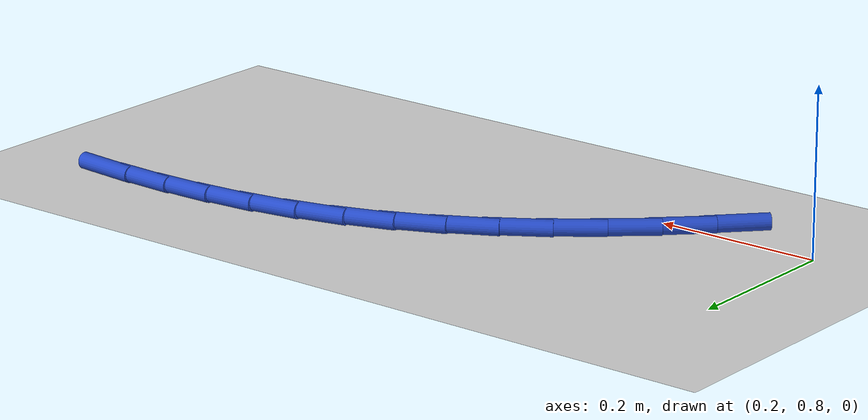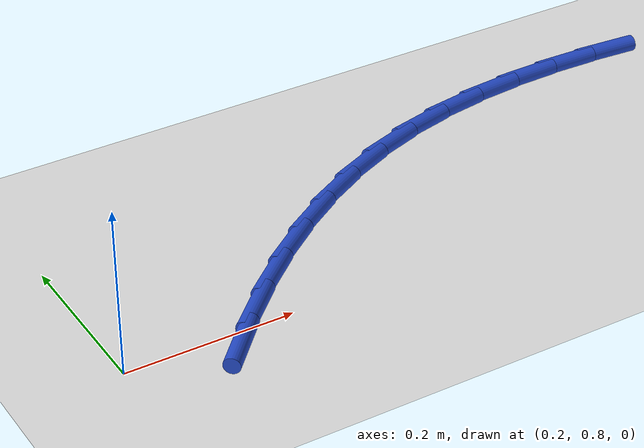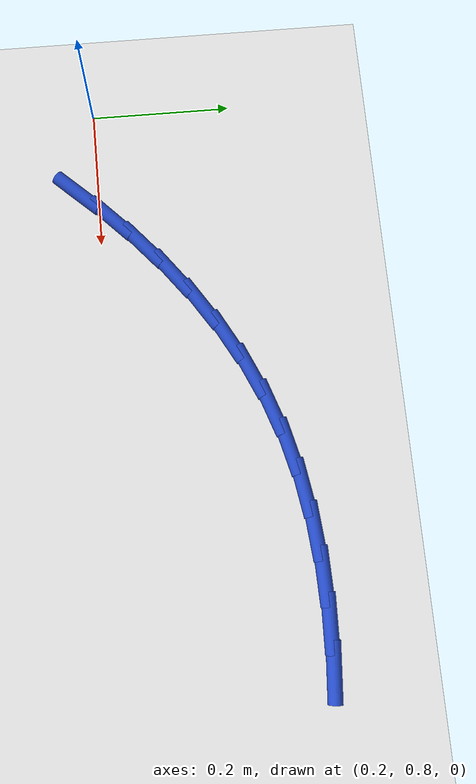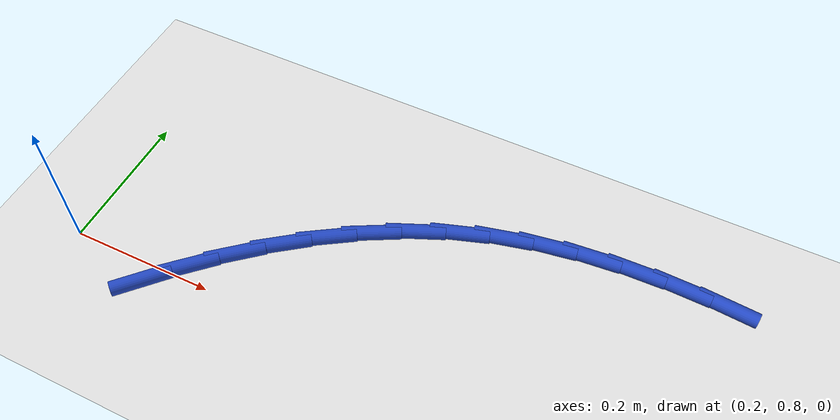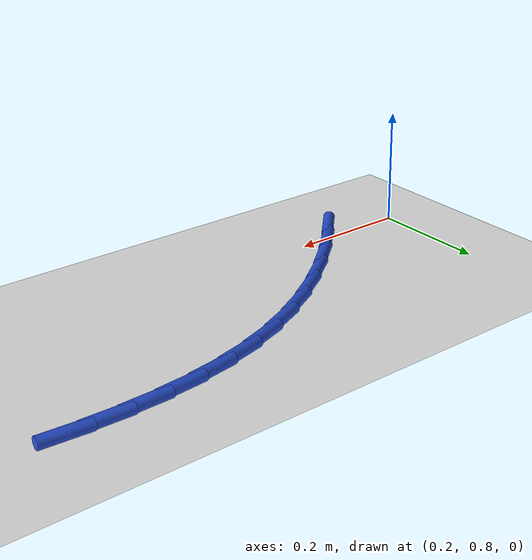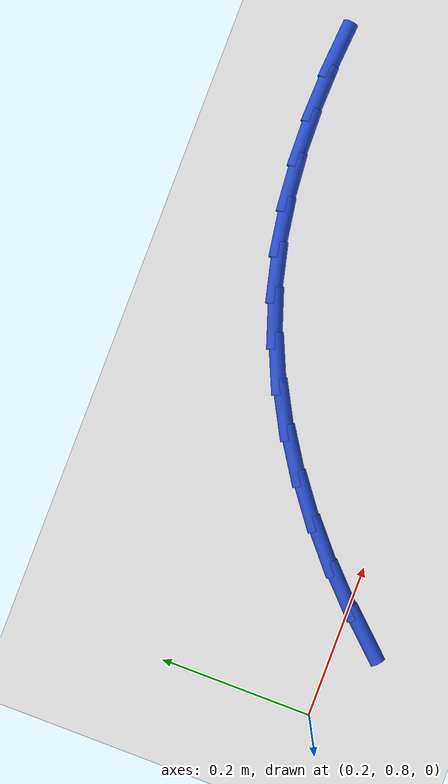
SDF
<sdf version="1.6">
 <world name="default">
  <model name="ground_plane">
   <static>1</static>
   <link name="link">
    <collision name="collision">
     <geometry><plane><normal>0 0 1</normal><size>100 100</size></plane></geometry>
     <surface><friction><ode><mu>100</mu><mu2>50</mu2></ode></friction></surface>
    </collision>
    <visual name="visual">
     <cast_shadows>0</cast_shadows>
     <geometry><plane><normal>0 0 1</normal><size>100 100</size></plane></geometry>
     <material>
      <script><uri>file://media/materials/scripts/gazebo.material</uri><name>Gazebo/WhiteGlow</name></script>
     </material>
    </visual>
   </link>
  </model>
  <model name="line">
   <link name="link_14">
    <pose>0.322248117505355 0.7719158314990692 0.01 0 1.57 0.8221939506581101</pose>
    <collision name="collision">
     <geometry><cylinder><radius>0.01</radius><length>0.08</length></cylinder></geometry>
    </collision>
    <visual name="visual">
     <material>
      <script><name>Gazebo/Blue</name><uri>file://media/materials/scripts/gazebo.material</uri></script>
     </material>
     <geometry><cylinder><radius>0.01</radius><length>0.08</length></cylinder></geometry>
    </visual>
   </link>
   <link name="link_15">
    <pose>0.3643796425420993 0.8172678354217048 0.01 0 1.57 0.7667286236017107</pose>
    <collision name="collision">
     <geometry><cylinder><radius>0.01</radius><length>0.08</length></cylinder></geometry>
    </collision>
    <visual name="visual">
     <material>
      <script><name>Gazebo/Blue</name><uri>file://media/materials/scripts/gazebo.material</uri></script>
     </material>
     <geometry><cylinder><radius>0.01</radius><length>0.08</length></cylinder></geometry>
    </visual>
   </link>
   <link name="link_16">
    <pose>0.40858137969574554 0.8598491840345921 0.01 0 1.57 0.7068071699966685</pose>
    <collision name="collision">
     <geometry><cylinder><radius>0.01</radius><length>0.08</length></cylinder></geometry>
    </collision>
    <visual name="visual">
     <material>
      <script><name>Gazebo/Blue</name><uri>file://media/materials/scripts/gazebo.material</uri></script>
     </material>
     <geometry><cylinder><radius>0.01</radius><length>0.08</length></cylinder></geometry>
    </visual>
   </link>
   <link name="link_17">
    <pose>0.45478569107052236 0.8993073046756761 0.01 0 1.57 0.6418756305259685</pose>
    <collision name="collision">
     <geometry><cylinder><radius>0.01</radius><length>0.08</length></cylinder></geometry>
    </collision>
    <visual name="visual">
     <material>
      <script><name>Gazebo/Blue</name><uri>file://media/materials/scripts/gazebo.material</uri></script>
     </material>
     <geometry><cylinder><radius>0.01</radius><length>0.08</length></cylinder></geometry>
    </visual>
   </link>
   <link name="link_18">
    <pose>0.5029249387706585 0.9352896246829016 0.01 0 1.57 0.5714348431623006</pose>
    <collision name="collision">
     <geometry><cylinder><radius>0.01</radius><length>0.08</length></cylinder></geometry>
    </collision>
    <visual name="visual">
     <material>
      <script><name>Gazebo/Blue</name><uri>file://media/materials/scripts/gazebo.material</uri></script>
     </material>
     <geometry><cylinder><radius>0.01</radius><length>0.08</length></cylinder></geometry>
    </visual>
   </link>
   <link name="link_19">
    <pose>0.5529314849003826 0.9674435713942138 0.01 0 1.57 0.4950981298889312</pose>
    <collision name="collision">
     <geometry><cylinder><radius>0.01</radius><length>0.08</length></cylinder></geometry>
    </collision>
    <visual name="visual">
     <material>
      <script><name>Gazebo/Blue</name><uri>file://media/materials/scripts/gazebo.material</uri></script>
     </material>
     <geometry><cylinder><radius>0.01</radius><length>0.08</length></cylinder></geometry>
    </visual>
   </link>
   <link name="link_20">
    <pose>0.6047376915639232 0.9954165721475574 0.01 0 1.57 0.4126691974608869</pose>
    <collision name="collision">
     <geometry><cylinder><radius>0.01</radius><length>0.08</length></cylinder></geometry>
    </collision>
    <visual name="visual">
     <material>
      <script><name>Gazebo/Blue</name><uri>file://media/materials/scripts/gazebo.material</uri></script>
     </material>
     <geometry><cylinder><radius>0.01</radius><length>0.08</length></cylinder></geometry>
    </visual>
   </link>
   <link name="link_21">
    <pose>0.6582759208655091 1.0188560542808776 0.01 0 1.57 0.324381510694979</pose>
    <collision name="collision">
     <geometry><cylinder><radius>0.01</radius><length>0.08</length></cylinder></geometry>
    </collision>
    <visual name="visual">
     <material>
      <script><name>Gazebo/Blue</name><uri>file://media/materials/scripts/gazebo.material</uri></script>
     </material>
     <geometry><cylinder><radius>0.01</radius><length>0.08</length></cylinder></geometry>
    </visual>
   </link>
   <link name="link_22">
    <pose>0.7134767804450536 1.037417850654256 0.01 0 1.57 0.23632776805525896</pose>
    <collision name="collision">
     <geometry><cylinder><radius>0.01</radius><length>0.08</length></cylinder></geometry>
    </collision>
    <visual name="visual">
     <material>
      <script><name>Gazebo/Blue</name><uri>file://media/materials/scripts/gazebo.material</uri></script>
     </material>
     <geometry><cylinder><radius>0.01</radius><length>0.08</length></cylinder></geometry>
    </visual>
   </link>
   <link name="link_23">
    <pose>0.7702037707829591 1.0510793000768008 0.01 0 1.57 0.15644093862572186</pose>
    <collision name="collision">
     <geometry><cylinder><radius>0.01</radius><length>0.08</length></cylinder></geometry>
    </collision>
    <visual name="visual">
     <material>
      <script><name>Gazebo/Blue</name><uri>file://media/materials/scripts/gazebo.material</uri></script>
     </material>
     <geometry><cylinder><radius>0.01</radius><length>0.08</length></cylinder></geometry>
    </visual>
   </link>
   <link name="link_24">
    <pose>0.8282338475255112 1.060232371916112 0.01 0 1.57 0.08547138999036553</pose>
    <collision name="collision">
     <geometry><cylinder><radius>0.01</radius><length>0.08</length></cylinder></geometry>
    </collision>
    <visual name="visual">
     <material>
      <script><name>Gazebo/Blue</name><uri>file://media/materials/scripts/gazebo.material</uri></script>
     </material>
     <geometry><cylinder><radius>0.01</radius><length>0.08</length></cylinder></geometry>
    </visual>
   </link>
   <link name="link_25">
    <pose>0.8873382452962487 1.065296444580202 0.01 0 1.57 0.023256073010002553</pose>
    <collision name="collision">
     <geometry><cylinder><radius>0.01</radius><length>0.08</length></cylinder></geometry>
    </collision>
    <visual name="visual">
     <material>
      <script><name>Gazebo/Blue</name><uri>file://media/materials/scripts/gazebo.material</uri></script>
     </material>
     <geometry><cylinder><radius>0.01</radius><length>0.08</length></cylinder></geometry>
    </visual>
   </link>
   <link name="link_26">
    <pose>0.9472881987187121 1.0666908964770863 0.01 0 1.57 -0.03063083658479625</pose>
    <collision name="collision">
     <geometry><cylinder><radius>0.01</radius><length>0.08</length></cylinder></geometry>
    </collision>
    <visual name="visual">
     <material>
      <script><name>Gazebo/Blue</name><uri>file://media/materials/scripts/gazebo.material</uri></script>
     </material>
     <geometry><cylinder><radius>0.01</radius><length>0.08</length></cylinder></geometry>
    </visual>
   </link>
   <link name="link_27">
    <pose>1.0078549424164405 1.0648351060147783 0.01 0 1.57 -0.07673643615851124</pose>
    <collision name="collision">
     <geometry><cylinder><radius>0.01</radius><length>0.08</length></cylinder></geometry>
    </collision>
    <visual name="visual">
     <material>
      <script><name>Gazebo/Blue</name><uri>file://media/materials/scripts/gazebo.material</uri></script>
     </material>
     <geometry><cylinder><radius>0.01</radius><length>0.08</length></cylinder></geometry>
    </visual>
   </link>
  </model>
 </world>
</sdf>
